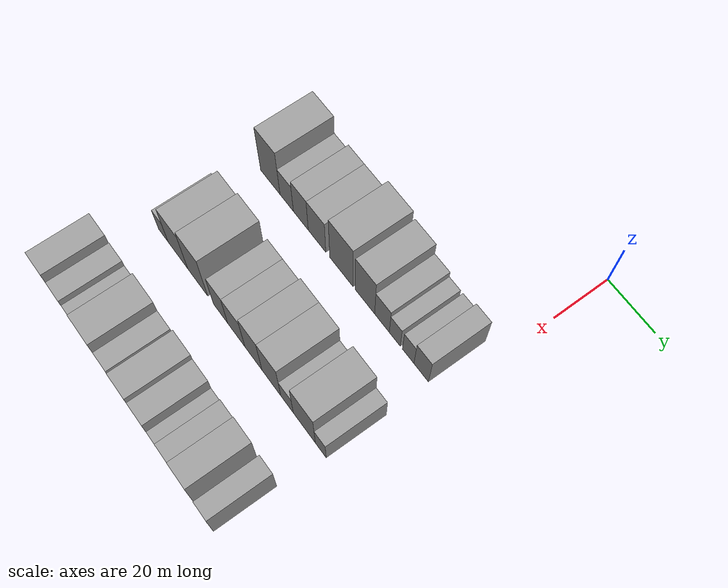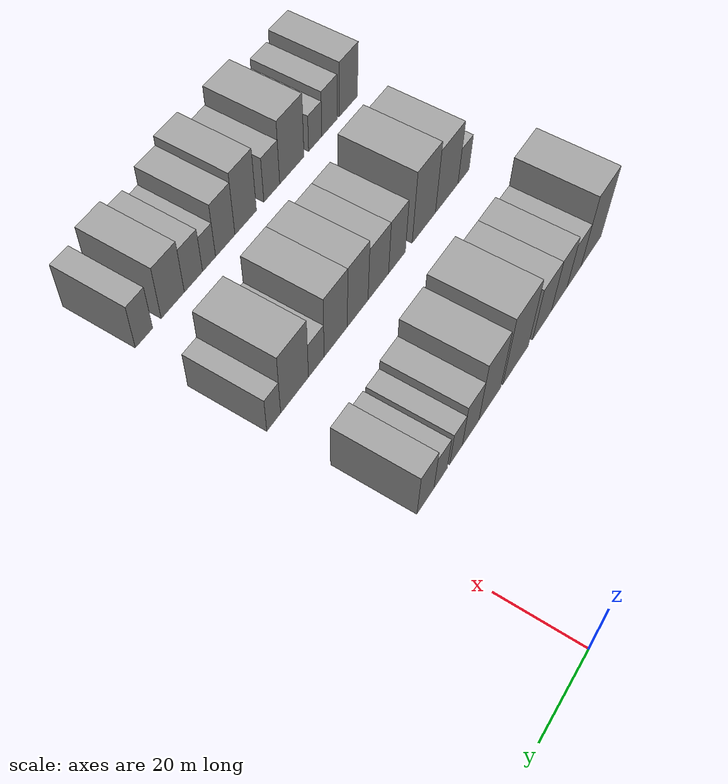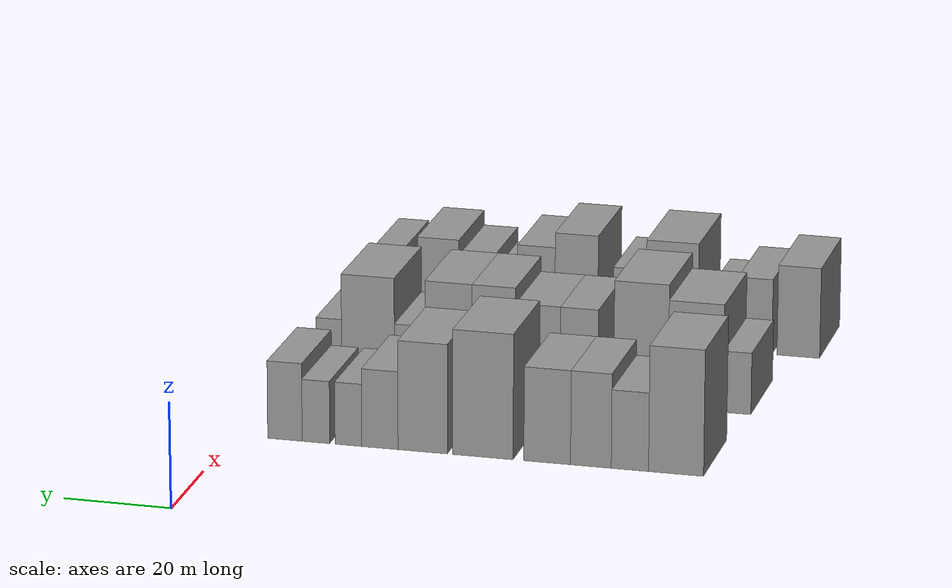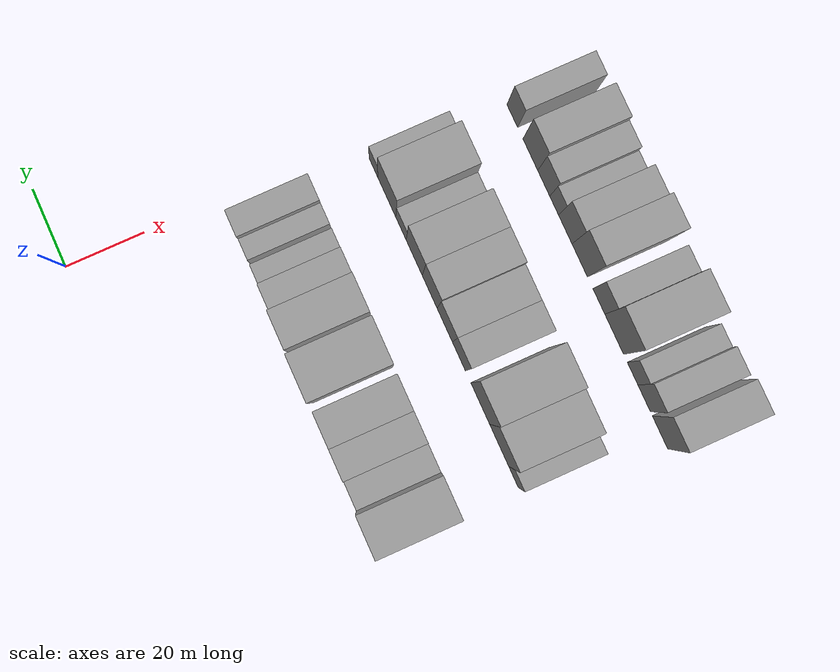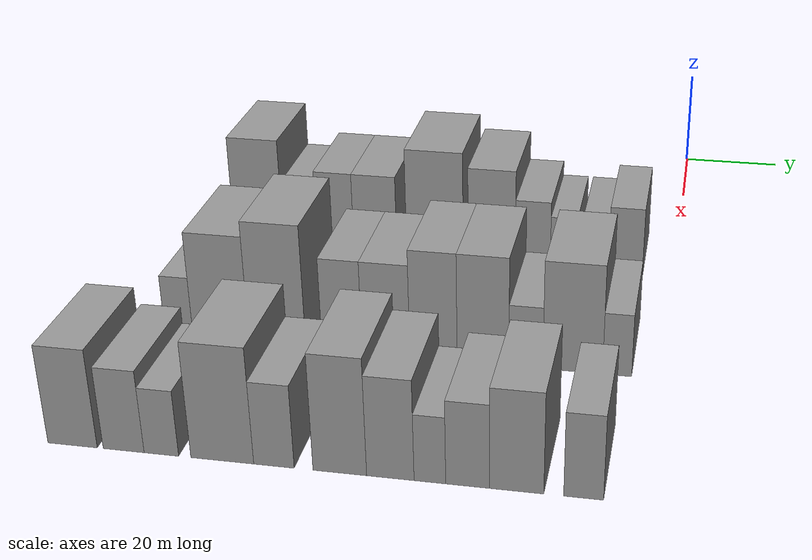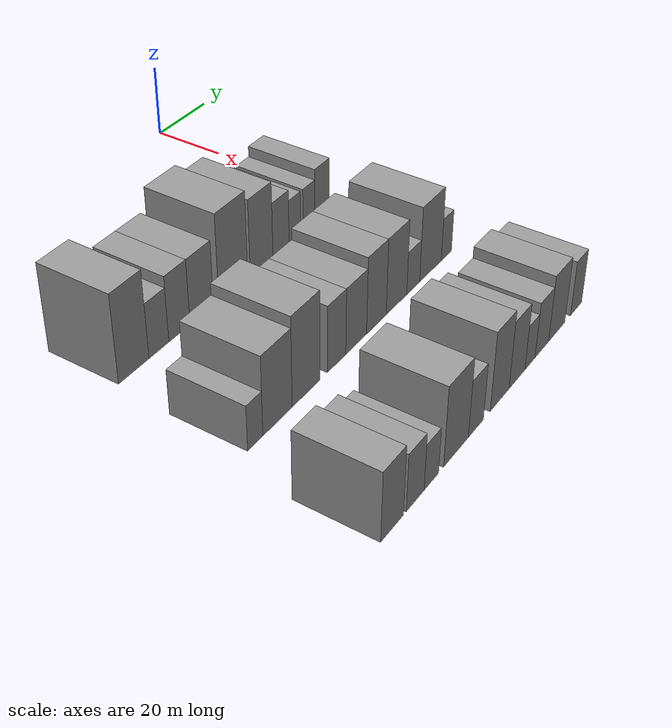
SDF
<sdf version="1.6">
 <world name="default">
  <model name="building_32">
   <static>1</static>
   <pose>50.0000 -82.7374 0 0.000000 0.000000 0.000000</pose>
   <link name="link">
    <pose>0 0 12.00 0 0 0</pose>
    <collision name="collision"><geometry><box><size>20.0000 10.1527 24.0000</size></box></geometry></collision>
    <visual name="visual">
     <cast_shadows>0</cast_shadows>
     <geometry><box><size>20.0000 10.1527 24.0000</size></box></geometry>
     <material>
      <script>
       <uri>model://grey_wall/materials/scripts</uri>
       <uri>model://grey_wall/materials/textures</uri>
       <name>vrc/grey_wall</name>
      </script>
     </material>
    </visual>
   </link>
  </model>
  <model name="building_33">
   <static>1</static>
   <pose>50.0000 -74.2116 0 0.000000 0.000000 0.000000</pose>
   <link name="link">
    <pose>0 0 7.50 0 0 0</pose>
    <collision name="collision"><geometry><box><size>20.0000 6.8991 15.0000</size></box></geometry></collision>
    <visual name="visual">
     <cast_shadows>0</cast_shadows>
     <geometry><box><size>20.0000 6.8991 15.0000</size></box></geometry>
     <material>
      <script>
       <uri>model://grey_wall/materials/scripts</uri>
       <uri>model://grey_wall/materials/textures</uri>
       <name>vrc/grey_wall</name>
      </script>
     </material>
    </visual>
   </link>
  </model>
  <model name="building_34">
   <static>1</static>
   <pose>50.0000 -66.9841 0 0.000000 0.000000 0.000000</pose>
   <link name="link">
    <pose>0 0 9.00 0 0 0</pose>
    <collision name="collision"><geometry><box><size>20.0000 7.5560 18.0000</size></box></geometry></collision>
    <visual name="visual">
     <cast_shadows>0</cast_shadows>
     <geometry><box><size>20.0000 7.5560 18.0000</size></box></geometry>
     <material>
      <script>
       <uri>model://grey_wall/materials/scripts</uri>
       <uri>model://grey_wall/materials/textures</uri>
       <name>vrc/grey_wall</name>
      </script>
     </material>
    </visual>
   </link>
  </model>
  <model name="building_35">
   <static>1</static>
   <pose>50.0000 -58.8484 0 0.000000 0.000000 0.000000</pose>
   <link name="link">
    <pose>0 0 9.00 0 0 0</pose>
    <collision name="collision"><geometry><box><size>20.0000 8.7153 18.0000</size></box></geometry></collision>
    <visual name="visual">
     <cast_shadows>0</cast_shadows>
     <geometry><box><size>20.0000 8.7153 18.0000</size></box></geometry>
     <material>
      <script>
       <uri>model://grey_wall/materials/scripts</uri>
       <uri>model://grey_wall/materials/textures</uri>
       <name>vrc/grey_wall</name>
      </script>
     </material>
    </visual>
   </link>
  </model>
  <model name="building_36">
   <static>1</static>
   <pose>50.0000 -46.8286 0 0.000000 0.000000 0.000000</pose>
   <link name="link">
    <pose>0 0 12.00 0 0 0</pose>
    <collision name="collision"><geometry><box><size>20.0000 11.3243 24.0000</size></box></geometry></collision>
    <visual name="visual">
     <cast_shadows>0</cast_shadows>
     <geometry><box><size>20.0000 11.3243 24.0000</size></box></geometry>
     <material>
      <script>
       <uri>model://grey_wall/materials/scripts</uri>
       <uri>model://grey_wall/materials/textures</uri>
       <name>vrc/grey_wall</name>
      </script>
     </material>
    </visual>
   </link>
  </model>
  <model name="building_37">
   <static>1</static>
   <pose>50.0000 -35.5093 0 0.000000 0.000000 0.000000</pose>
   <link name="link">
    <pose>0 0 10.50 0 0 0</pose>
    <collision name="collision"><geometry><box><size>20.0000 9.3142 21.0000</size></box></geometry></collision>
    <visual name="visual">
     <cast_shadows>0</cast_shadows>
     <geometry><box><size>20.0000 9.3142 21.0000</size></box></geometry>
     <material>
      <script>
       <uri>model://grey_wall/materials/scripts</uri>
       <uri>model://grey_wall/materials/textures</uri>
       <name>vrc/grey_wall</name>
      </script>
     </material>
    </visual>
   </link>
  </model>
  <model name="building_38">
   <static>1</static>
   <pose>50.0000 -27.4228 0 0.000000 0.000000 0.000000</pose>
   <link name="link">
    <pose>0 0 7.50 0 0 0</pose>
    <collision name="collision"><geometry><box><size>20.0000 6.8588 15.0000</size></box></geometry></collision>
    <visual name="visual">
     <cast_shadows>0</cast_shadows>
     <geometry><box><size>20.0000 6.8588 15.0000</size></box></geometry>
     <material>
      <script>
       <uri>model://grey_wall/materials/scripts</uri>
       <uri>model://grey_wall/materials/textures</uri>
       <name>vrc/grey_wall</name>
      </script>
     </material>
    </visual>
   </link>
  </model>
  <model name="building_39">
   <static>1</static>
   <pose>50.0000 -21.4592 0 0.000000 0.000000 0.000000</pose>
   <link name="link">
    <pose>0 0 6.00 0 0 0</pose>
    <collision name="collision"><geometry><box><size>20.0000 5.0684 12.0000</size></box></geometry></collision>
    <visual name="visual">
     <cast_shadows>0</cast_shadows>
     <geometry><box><size>20.0000 5.0684 12.0000</size></box></geometry>
     <material>
      <script>
       <uri>model://grey_wall/materials/scripts</uri>
       <uri>model://grey_wall/materials/textures</uri>
       <name>vrc/grey_wall</name>
      </script>
     </material>
    </visual>
   </link>
  </model>
  <model name="building_40">
   <static>1</static>
   <pose>50.0000 -15.3044 0 0.000000 0.000000 0.000000</pose>
   <link name="link">
    <pose>0 0 6.00 0 0 0</pose>
    <collision name="collision"><geometry><box><size>20.0000 5.2412 12.0000</size></box></geometry></collision>
    <visual name="visual">
     <cast_shadows>0</cast_shadows>
     <geometry><box><size>20.0000 5.2412 12.0000</size></box></geometry>
     <material>
      <script>
       <uri>model://grey_wall/materials/scripts</uri>
       <uri>model://grey_wall/materials/textures</uri>
       <name>vrc/grey_wall</name>
      </script>
     </material>
    </visual>
   </link>
  </model>
  <model name="building_41">
   <static>1</static>
   <pose>50.0000 -9.3986 0 0.000000 0.000000 0.000000</pose>
   <link name="link">
    <pose>0 0 7.50 0 0 0</pose>
    <collision name="collision"><geometry><box><size>20.0000 6.5705 15.0000</size></box></geometry></collision>
    <visual name="visual">
     <cast_shadows>0</cast_shadows>
     <geometry><box><size>20.0000 6.5705 15.0000</size></box></geometry>
     <material>
      <script>
       <uri>model://grey_wall/materials/scripts</uri>
       <uri>model://grey_wall/materials/textures</uri>
       <name>vrc/grey_wall</name>
      </script>
     </material>
    </visual>
   </link>
  </model>
  <model name="building_112">
   <static>1</static>
   <pose>85.0000 -86.5888 0 0.000000 0.000000 0.000000</pose>
   <link name="link">
    <pose>0 0 6.00 0 0 0</pose>
    <collision name="collision"><geometry><box><size>20.0000 5.2501 12.0000</size></box></geometry></collision>
    <visual name="visual">
     <cast_shadows>0</cast_shadows>
     <geometry><box><size>20.0000 5.2501 12.0000</size></box></geometry>
     <material>
      <script>
       <uri>model://grey_wall/materials/scripts</uri>
       <uri>model://grey_wall/materials/textures</uri>
       <name>vrc/grey_wall</name>
      </script>
     </material>
    </visual>
   </link>
  </model>
  <model name="building_113">
   <static>1</static>
   <pose>85.0000 -78.7275 0 0.000000 0.000000 0.000000</pose>
   <link name="link">
    <pose>0 0 10.50 0 0 0</pose>
    <collision name="collision"><geometry><box><size>20.0000 10.4726 21.0000</size></box></geometry></collision>
    <visual name="visual">
     <cast_shadows>0</cast_shadows>
     <geometry><box><size>20.0000 10.4726 21.0000</size></box></geometry>
     <material>
      <script>
       <uri>model://grey_wall/materials/scripts</uri>
       <uri>model://grey_wall/materials/textures</uri>
       <name>vrc/grey_wall</name>
      </script>
     </material>
    </visual>
   </link>
  </model>
  <model name="building_114">
   <static>1</static>
   <pose>85.0000 -68.2779 0 0.000000 0.000000 0.000000</pose>
   <link name="link">
    <pose>0 0 12.00 0 0 0</pose>
    <collision name="collision"><geometry><box><size>20.0000 10.4266 24.0000</size></box></geometry></collision>
    <visual name="visual">
     <cast_shadows>0</cast_shadows>
     <geometry><box><size>20.0000 10.4266 24.0000</size></box></geometry>
     <material>
      <script>
       <uri>model://grey_wall/materials/scripts</uri>
       <uri>model://grey_wall/materials/textures</uri>
       <name>vrc/grey_wall</name>
      </script>
     </material>
    </visual>
   </link>
  </model>
  <model name="building_115">
   <static>1</static>
   <pose>85.0000 -56.4358 0 0.000000 0.000000 0.000000</pose>
   <link name="link">
    <pose>0 0 9.00 0 0 0</pose>
    <collision name="collision"><geometry><box><size>20.0000 7.2576 18.0000</size></box></geometry></collision>
    <visual name="visual">
     <cast_shadows>0</cast_shadows>
     <geometry><box><size>20.0000 7.2576 18.0000</size></box></geometry>
     <material>
      <script>
       <uri>model://grey_wall/materials/scripts</uri>
       <uri>model://grey_wall/materials/textures</uri>
       <name>vrc/grey_wall</name>
      </script>
     </material>
    </visual>
   </link>
  </model>
  <model name="building_116">
   <static>1</static>
   <pose>85.0000 -48.5118 0 0.000000 0.000000 0.000000</pose>
   <link name="link">
    <pose>0 0 9.00 0 0 0</pose>
    <collision name="collision"><geometry><box><size>20.0000 8.5904 18.0000</size></box></geometry></collision>
    <visual name="visual">
     <cast_shadows>0</cast_shadows>
     <geometry><box><size>20.0000 8.5904 18.0000</size></box></geometry>
     <material>
      <script>
       <uri>model://grey_wall/materials/scripts</uri>
       <uri>model://grey_wall/materials/textures</uri>
       <name>vrc/grey_wall</name>
      </script>
     </material>
    </visual>
   </link>
  </model>
  <model name="building_117">
   <static>1</static>
   <pose>85.0000 -40.0064 0 0.000000 0.000000 0.000000</pose>
   <link name="link">
    <pose>0 0 10.50 0 0 0</pose>
    <collision name="collision"><geometry><box><size>20.0000 8.4204 21.0000</size></box></geometry></collision>
    <visual name="visual">
     <cast_shadows>0</cast_shadows>
     <geometry><box><size>20.0000 8.4204 21.0000</size></box></geometry>
     <material>
      <script>
       <uri>model://grey_wall/materials/scripts</uri>
       <uri>model://grey_wall/materials/textures</uri>
       <name>vrc/grey_wall</name>
      </script>
     </material>
    </visual>
   </link>
  </model>
  <model name="building_118">
   <static>1</static>
   <pose>85.0000 -31.2434 0 0.000000 0.000000 0.000000</pose>
   <link name="link">
    <pose>0 0 10.50 0 0 0</pose>
    <collision name="collision"><geometry><box><size>20.0000 9.1055 21.0000</size></box></geometry></collision>
    <visual name="visual">
     <cast_shadows>0</cast_shadows>
     <geometry><box><size>20.0000 9.1055 21.0000</size></box></geometry>
     <material>
      <script>
       <uri>model://grey_wall/materials/scripts</uri>
       <uri>model://grey_wall/materials/textures</uri>
       <name>vrc/grey_wall</name>
      </script>
     </material>
    </visual>
   </link>
  </model>
  <model name="building_119">
   <static>1</static>
   <pose>85.0000 -23.7132 0 0.000000 0.000000 0.000000</pose>
   <link name="link">
    <pose>0 0 6.00 0 0 0</pose>
    <collision name="collision"><geometry><box><size>20.0000 5.9549 12.0000</size></box></geometry></collision>
    <visual name="visual">
     <cast_shadows>0</cast_shadows>
     <geometry><box><size>20.0000 5.9549 12.0000</size></box></geometry>
     <material>
      <script>
       <uri>model://grey_wall/materials/scripts</uri>
       <uri>model://grey_wall/materials/textures</uri>
       <name>vrc/grey_wall</name>
      </script>
     </material>
    </visual>
   </link>
  </model>
  <model name="building_120">
   <static>1</static>
   <pose>85.0000 -15.5753 0 0.000000 0.000000 0.000000</pose>
   <link name="link">
    <pose>0 0 10.50 0 0 0</pose>
    <collision name="collision"><geometry><box><size>20.0000 10.3208 21.0000</size></box></geometry></collision>
    <visual name="visual">
     <cast_shadows>0</cast_shadows>
     <geometry><box><size>20.0000 10.3208 21.0000</size></box></geometry>
     <material>
      <script>
       <uri>model://grey_wall/materials/scripts</uri>
       <uri>model://grey_wall/materials/textures</uri>
       <name>vrc/grey_wall</name>
      </script>
     </material>
    </visual>
   </link>
  </model>
  <model name="building_121">
   <static>1</static>
   <pose>85.0000 -7.9220 0 0.000000 0.000000 0.000000</pose>
   <link name="link">
    <pose>0 0 6.00 0 0 0</pose>
    <collision name="collision"><geometry><box><size>20.0000 4.9858 12.0000</size></box></geometry></collision>
    <visual name="visual">
     <cast_shadows>0</cast_shadows>
     <geometry><box><size>20.0000 4.9858 12.0000</size></box></geometry>
     <material>
      <script>
       <uri>model://grey_wall/materials/scripts</uri>
       <uri>model://grey_wall/materials/textures</uri>
       <name>vrc/grey_wall</name>
      </script>
     </material>
    </visual>
   </link>
  </model>
  <model name="building_193">
   <static>1</static>
   <pose>120.0000 -91.1529 0 0.000000 0.000000 0.000000</pose>
   <link name="link">
    <pose>0 0 9.00 0 0 0</pose>
    <collision name="collision"><geometry><box><size>20.0000 8.2787 18.0000</size></box></geometry></collision>
    <visual name="visual">
     <cast_shadows>0</cast_shadows>
     <geometry><box><size>20.0000 8.2787 18.0000</size></box></geometry>
     <material>
      <script>
       <uri>model://grey_wall/materials/scripts</uri>
       <uri>model://grey_wall/materials/textures</uri>
       <name>vrc/grey_wall</name>
      </script>
     </material>
    </visual>
   </link>
  </model>
  <model name="building_194">
   <static>1</static>
   <pose>120.0000 -82.6152 0 0.000000 0.000000 0.000000</pose>
   <link name="link">
    <pose>0 0 7.50 0 0 0</pose>
    <collision name="collision"><geometry><box><size>20.0000 6.7968 15.0000</size></box></geometry></collision>
    <visual name="visual">
     <cast_shadows>0</cast_shadows>
     <geometry><box><size>20.0000 6.7968 15.0000</size></box></geometry>
     <material>
      <script>
       <uri>model://grey_wall/materials/scripts</uri>
       <uri>model://grey_wall/materials/textures</uri>
       <name>vrc/grey_wall</name>
      </script>
     </material>
    </visual>
   </link>
  </model>
  <model name="building_195">
   <static>1</static>
   <pose>120.0000 -76.3747 0 0.000000 0.000000 0.000000</pose>
   <link name="link">
    <pose>0 0 6.00 0 0 0</pose>
    <collision name="collision"><geometry><box><size>20.0000 5.6841 12.0000</size></box></geometry></collision>
    <visual name="visual">
     <cast_shadows>0</cast_shadows>
     <geometry><box><size>20.0000 5.6841 12.0000</size></box></geometry>
     <material>
      <script>
       <uri>model://grey_wall/materials/scripts</uri>
       <uri>model://grey_wall/materials/textures</uri>
       <name>vrc/grey_wall</name>
      </script>
     </material>
    </visual>
   </link>
  </model>
  <model name="building_196">
   <static>1</static>
   <pose>120.0000 -66.4212 0 0.000000 0.000000 0.000000</pose>
   <link name="link">
    <pose>0 0 10.50 0 0 0</pose>
    <collision name="collision"><geometry><box><size>20.0000 10.2230 21.0000</size></box></geometry></collision>
    <visual name="visual">
     <cast_shadows>0</cast_shadows>
     <geometry><box><size>20.0000 10.2230 21.0000</size></box></geometry>
     <material>
      <script>
       <uri>model://grey_wall/materials/scripts</uri>
       <uri>model://grey_wall/materials/textures</uri>
       <name>vrc/grey_wall</name>
      </script>
     </material>
    </visual>
   </link>
  </model>
  <model name="building_197">
   <static>1</static>
   <pose>120.0000 -58.0589 0 0.000000 0.000000 0.000000</pose>
   <link name="link">
    <pose>0 0 7.50 0 0 0</pose>
    <collision name="collision"><geometry><box><size>20.0000 6.5016 15.0000</size></box></geometry></collision>
    <visual name="visual">
     <cast_shadows>0</cast_shadows>
     <geometry><box><size>20.0000 6.5016 15.0000</size></box></geometry>
     <material>
      <script>
       <uri>model://grey_wall/materials/scripts</uri>
       <uri>model://grey_wall/materials/textures</uri>
       <name>vrc/grey_wall</name>
      </script>
     </material>
    </visual>
   </link>
  </model>
  <model name="building_198">
   <static>1</static>
   <pose>120.0000 -47.5576 0 0.000000 0.000000 0.000000</pose>
   <link name="link">
    <pose>0 0 10.50 0 0 0</pose>
    <collision name="collision"><geometry><box><size>20.0000 8.5010 21.0000</size></box></geometry></collision>
    <visual name="visual">
     <cast_shadows>0</cast_shadows>
     <geometry><box><size>20.0000 8.5010 21.0000</size></box></geometry>
     <material>
      <script>
       <uri>model://grey_wall/materials/scripts</uri>
       <uri>model://grey_wall/materials/textures</uri>
       <name>vrc/grey_wall</name>
      </script>
     </material>
    </visual>
   </link>
  </model>
  <model name="building_199">
   <static>1</static>
   <pose>120.0000 -39.5896 0 0.000000 0.000000 0.000000</pose>
   <link name="link">
    <pose>0 0 9.00 0 0 0</pose>
    <collision name="collision"><geometry><box><size>20.0000 7.4352 18.0000</size></box></geometry></collision>
    <visual name="visual">
     <cast_shadows>0</cast_shadows>
     <geometry><box><size>20.0000 7.4352 18.0000</size></box></geometry>
     <material>
      <script>
       <uri>model://grey_wall/materials/scripts</uri>
       <uri>model://grey_wall/materials/textures</uri>
       <name>vrc/grey_wall</name>
      </script>
     </material>
    </visual>
   </link>
  </model>
  <model name="building_200">
   <static>1</static>
   <pose>120.0000 -33.4152 0 0.000000 0.000000 0.000000</pose>
   <link name="link">
    <pose>0 0 6.00 0 0 0</pose>
    <collision name="collision"><geometry><box><size>20.0000 4.9136 12.0000</size></box></geometry></collision>
    <visual name="visual">
     <cast_shadows>0</cast_shadows>
     <geometry><box><size>20.0000 4.9136 12.0000</size></box></geometry>
     <material>
      <script>
       <uri>model://grey_wall/materials/scripts</uri>
       <uri>model://grey_wall/materials/textures</uri>
       <name>vrc/grey_wall</name>
      </script>
     </material>
    </visual>
   </link>
  </model>
  <model name="building_201">
   <static>1</static>
   <pose>120.0000 -27.5976 0 0.000000 0.000000 0.000000</pose>
   <link name="link">
    <pose>0 0 7.50 0 0 0</pose>
    <collision name="collision"><geometry><box><size>20.0000 6.7215 15.0000</size></box></geometry></collision>
    <visual name="visual">
     <cast_shadows>0</cast_shadows>
     <geometry><box><size>20.0000 6.7215 15.0000</size></box></geometry>
     <material>
      <script>
       <uri>model://grey_wall/materials/scripts</uri>
       <uri>model://grey_wall/materials/textures</uri>
       <name>vrc/grey_wall</name>
      </script>
     </material>
    </visual>
   </link>
  </model>
  <model name="building_202">
   <static>1</static>
   <pose>120.0000 -20.0796 0 0.000000 0.000000 0.000000</pose>
   <link name="link">
    <pose>0 0 9.00 0 0 0</pose>
    <collision name="collision"><geometry><box><size>20.0000 8.3146 18.0000</size></box></geometry></collision>
    <visual name="visual">
     <cast_shadows>0</cast_shadows>
     <geometry><box><size>20.0000 8.3146 18.0000</size></box></geometry>
     <material>
      <script>
       <uri>model://grey_wall/materials/scripts</uri>
       <uri>model://grey_wall/materials/textures</uri>
       <name>vrc/grey_wall</name>
      </script>
     </material>
    </visual>
   </link>
  </model>
  <model name="building_203">
   <static>1</static>
   <pose>120.0000 -9.9190 0 0.000000 0.000000 0.000000</pose>
   <link name="link">
    <pose>0 0 7.50 0 0 0</pose>
    <collision name="collision"><geometry><box><size>20.0000 6.0065 15.0000</size></box></geometry></collision>
    <visual name="visual">
     <cast_shadows>0</cast_shadows>
     <geometry><box><size>20.0000 6.0065 15.0000</size></box></geometry>
     <material>
      <script>
       <uri>model://grey_wall/materials/scripts</uri>
       <uri>model://grey_wall/materials/textures</uri>
       <name>vrc/grey_wall</name>
      </script>
     </material>
    </visual>
   </link>
  </model>
 </world>
</sdf>
